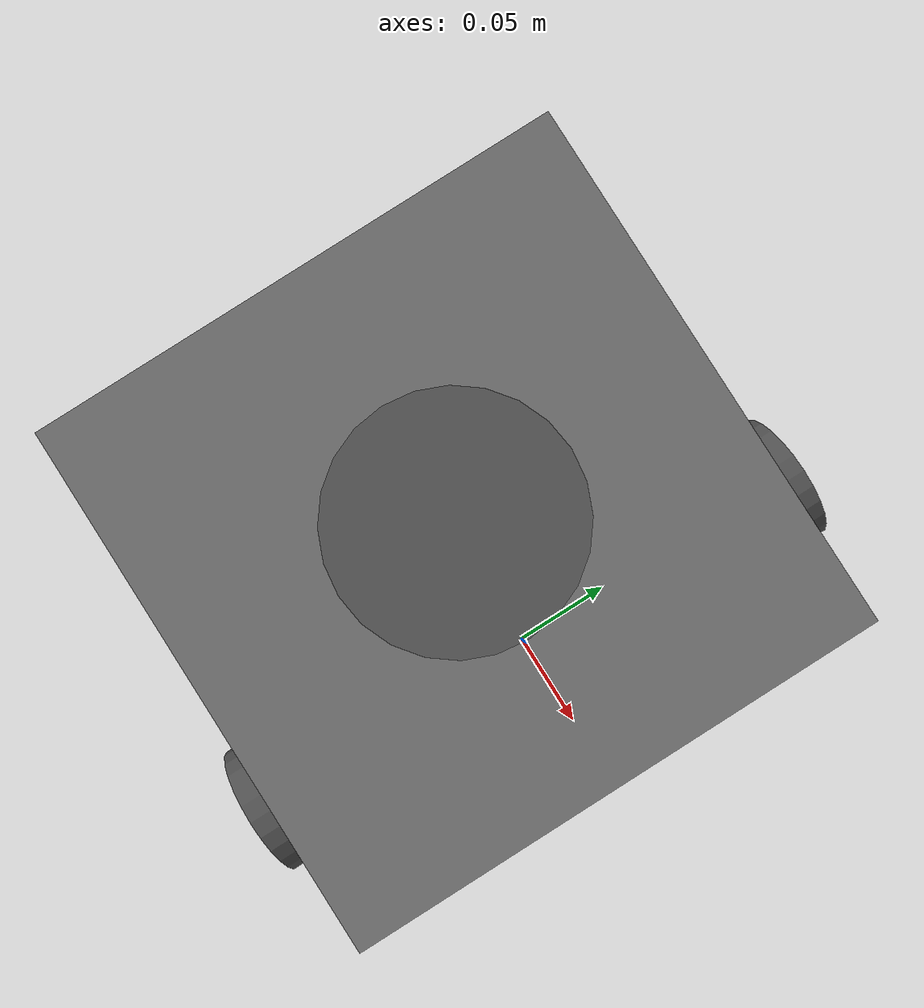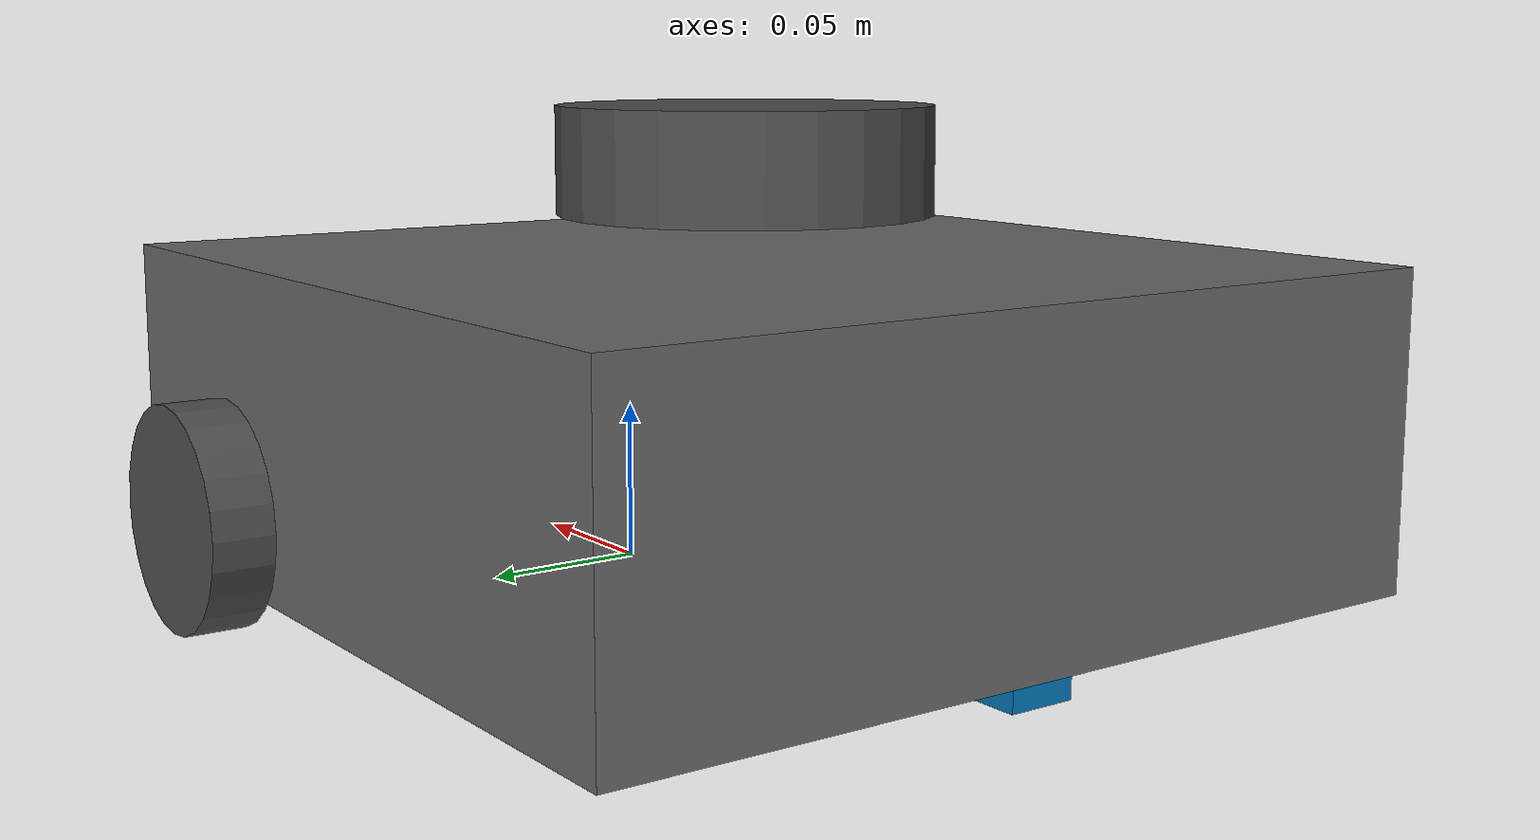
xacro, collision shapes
<?xml version="1.0"?>
<robot name="turtlebot3_waffle_pi" xmlns:xacro="http://ros.org/wiki/xacro">

  <!-- Optional namespace for multi-robot / comparison -->
  <xacro:arg name="namespace" default=""/>
  <xacro:property name="ns" value="$(arg namespace)"/>

  <!-- Common materials -->
  <xacro:include filename="$(find sim)/robot_description/urdf/common_properties.urdf.xacro"/>

  <!-- Base -->
  <link name="${ns}base_footprint"/>

  <joint name="${ns}base_joint" type="fixed">
    <parent link="${ns}base_footprint"/>
    <child link="${ns}base_link"/>
    <origin xyz="0 0 0.010" rpy="0 0 0"/>
  </joint>

  <link name="${ns}base_link">
    <visual>
      <origin xyz="-0.064 0 0" rpy="0 0 0"/>
      <geometry>
        <mesh filename="package://sim/robot_description/meshes/turtlebot3_description/meshes/bases/waffle_pi_base.stl"
              scale="0.001 0.001 0.001"/>
      </geometry>
      <material name="light_black"/>
    </visual>

    <collision>
      <origin xyz="-0.064 0 0.047"/>
      <geometry>
        <box size="0.266 0.266 0.094"/>
      </geometry>
    </collision>

    <inertial>
      <mass value="1.3729096"/>
      <origin xyz="0 0 0"/>
      <inertia
        ixx="8.7002718e-03" ixy="-4.7576583e-05" ixz="1.1160499e-04"
        iyy="8.6195418e-03" iyz="-3.5422299e-06"
        izz="1.4612727e-02"/>
    </inertial>
  </link>

  <!-- Wheels -->
  <joint name="${ns}wheel_left_joint" type="continuous">
    <parent link="${ns}base_link"/>
    <child link="${ns}wheel_left_link"/>
    <origin xyz="0 0.144 0.023" rpy="-1.57 0 0"/>
    <axis xyz="0 0 1"/>
  </joint>

  <link name="${ns}wheel_left_link">
    <visual>
      <origin rpy="1.57 0 0"/>
      <geometry>
        <mesh filename="package://sim/robot_description/meshes/turtlebot3_description/meshes/wheels/left_tire.stl"
              scale="0.001 0.001 0.001"/>
      </geometry>
      <material name="dark"/>
    </visual>

    <collision>
      <geometry>
        <cylinder length="0.018" radius="0.033"/>
      </geometry>
    </collision>

    <inertial>
      <mass value="0.02849894"/>
      <inertia
        ixx="1.1175580e-05" ixy="-4.2369783e-11" ixz="-5.9381719e-09"
        iyy="1.1192413e-05" iyz="-1.4400107e-11"
        izz="2.0712558e-05"/>
    </inertial>
  </link>

  <joint name="${ns}wheel_right_joint" type="continuous">
    <parent link="${ns}base_link"/>
    <child link="${ns}wheel_right_link"/>
    <origin xyz="0 -0.144 0.023" rpy="-1.57 0 0"/>
    <axis xyz="0 0 1"/>
  </joint>

  <link name="${ns}wheel_right_link">
    <visual>
      <origin rpy="1.57 0 0"/>
      <geometry>
        <mesh filename="package://sim/robot_description/meshes/turtlebot3_description/meshes/wheels/right_tire.stl"
              scale="0.001 0.001 0.001"/>
      </geometry>
      <material name="dark"/>
    </visual>

    <collision>
      <geometry>
        <cylinder length="0.018" radius="0.033"/>
      </geometry>
    </collision>

    <inertial>
      <mass value="0.02849894"/>
      <inertia
        ixx="1.1175580e-05" ixy="-4.2369783e-11" ixz="-5.9381719e-09"
        iyy="1.1192413e-05" iyz="-1.4400107e-11"
        izz="2.0712558e-05"/>
    </inertial>
  </link>

  <!-- Casters -->
  <joint name="${ns}caster_back_joint" type="fixed">
    <parent link="${ns}base_link"/>
    <child link="${ns}caster_back_link"/>
    <origin xyz="-0.177 0 -0.004" rpy="-1.57 0 0"/>
  </joint>

  <link name="${ns}caster_back_link">
    <collision>
      <geometry>
        <box size="0.030 0.009 0.020"/>
      </geometry>
    </collision>

    <inertial>
      <mass value="0.005"/>
      <inertia
        ixx="0.001" ixy="0.0" ixz="0.0"
        iyy="0.001" iyz="0.0"
        izz="0.001"/>
    </inertial>
  </link>

  <!-- IMU -->
  <joint name="${ns}imu_joint" type="fixed">
    <parent link="${ns}base_link"/>
    <child link="${ns}imu_link"/>
    <origin xyz="0 0 0.068"/>
  </joint>

  <link name="${ns}imu_link"/>

  <!-- LiDAR -->
  <joint name="${ns}scan_joint" type="fixed">
    <parent link="${ns}base_link"/>
    <child link="${ns}base_scan"/>
    <origin xyz="-0.064 0 0.122"/>
  </joint>

  <link name="${ns}base_scan">
    <visual>
      <geometry>
        <mesh filename="package://sim/robot_description/meshes/turtlebot3_description/meshes/sensors/lds.stl"
              scale="0.001 0.001 0.001"/>
      </geometry>
      <material name="dark"/>
    </visual>

    <collision>
      <geometry>
        <cylinder length="0.0315" radius="0.055"/>
      </geometry>
    </collision>

    <inertial>
      <mass value="0.114"/>
      <inertia
        ixx="0.001" ixy="0.0" ixz="0.0"
        iyy="0.001" iyz="0.0"
        izz="0.001"/>
    </inertial>
  </link>

</robot>

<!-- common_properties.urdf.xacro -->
<robot name="common_properties" xmlns:xacro="http://ros.org/wiki/xacro">

  <!-- Standard TurtleBot3 material palette -->
  <material name="black">
    <color rgba="0.0 0.0 0.0 1.0"/>
  </material>

  <material name="dark">
    <color rgba="0.3 0.3 0.3 1.0"/>
  </material>

  <material name="light_black">
    <color rgba="0.4 0.4 0.4 1.0"/>
  </material>

  <material name="blue">
    <color rgba="0.0 0.0 0.8 1.0"/>
  </material>

  <material name="green">
    <color rgba="0.0 0.8 0.0 1.0"/>
  </material>

  <material name="grey">
    <color rgba="0.5 0.5 0.5 1.0"/>
  </material>

  <material name="orange">
    <color rgba="1.0 0.4235 0.0392 1.0"/>
  </material>

  <material name="brown">
    <color rgba="0.8706 0.8118 0.7647 1.0"/>
  </material>

  <material name="red">
    <color rgba="0.8 0.0 0.0 1.0"/>
  </material>

  <material name="white">
    <color rgba="1.0 1.0 1.0 1.0"/>
  </material>

</robot>
